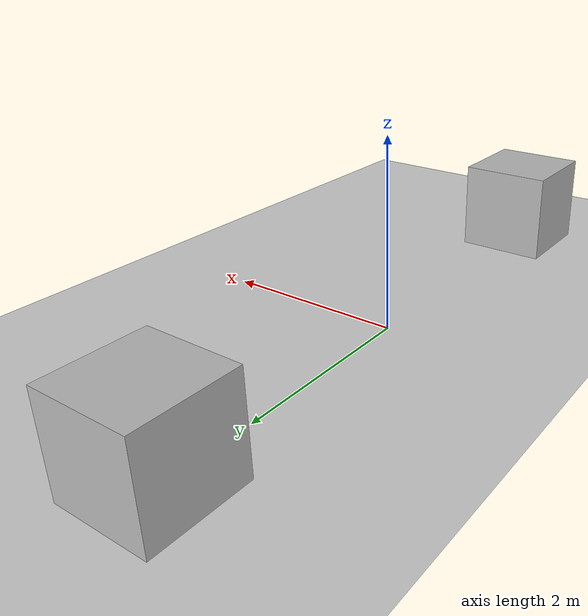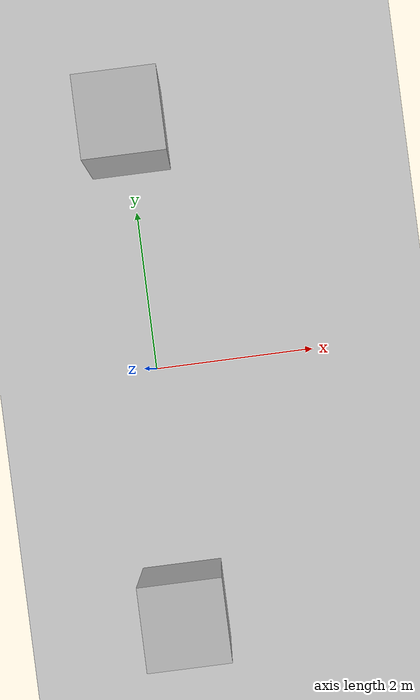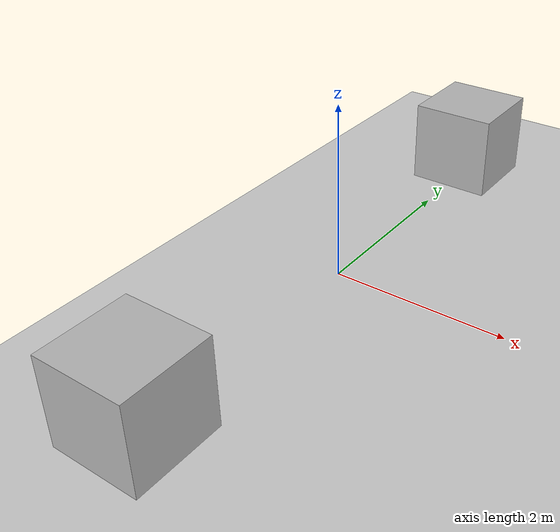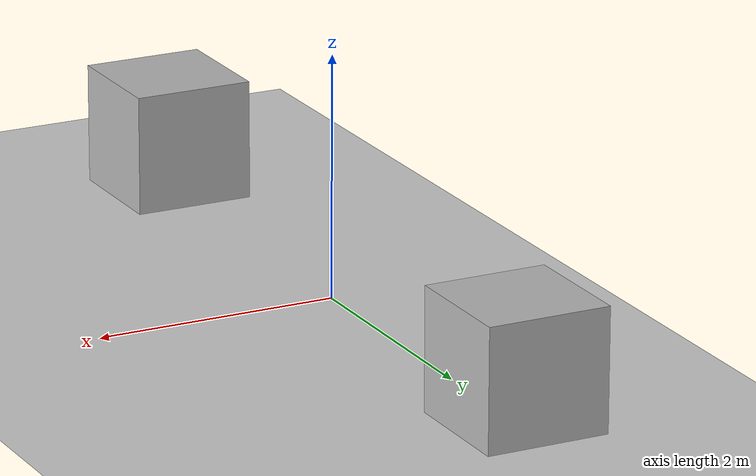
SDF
<?xml version="1.0"?>
<sdf version="1.6">
  <world name="default">
    <include>
      <uri>model://ground_plane</uri>
    </include>
    <include>
      <uri>model://sun</uri>
    </include>
    <model name="force_on_world_frame">
      <pose>0 3 0.5 0 0 1.57</pose>
      <link name="link">
        <collision name="collision">
          <geometry>
            <box>
              <size>1 1 1</size>
            </box>
          </geometry>
        </collision>
        <visual name="visual">
          <geometry>
            <box>
              <size>1 1 1</size>
            </box>
          </geometry>
        </visual>
      </link>
      <plugin name="gazebo_ros_force" filename="libgazebo_ros_force_mode.so">
        <ros>
          <namespace>/demo/world</namespace>
          <remapping>gazebo_ros_force:=force_demo</remapping>
        </ros>
        <link_name>link</link_name>
        <force_frame>world</force_frame>
      </plugin>

    </model>
    <model name="force_on_link_frame">
      <pose>0 -3 0.5 0 0 1.57</pose>
      <link name="link">
        <collision name="collision">
          <geometry>
            <box>
              <size>1 1 1</size>
            </box>
          </geometry>
        </collision>
        <visual name="visual">
          <geometry>
            <box>
              <size>1 1 1</size>
            </box>
          </geometry>
        </visual>
      </link>
      <plugin name="gazebo_ros_force" filename="libgazebo_ros_force_mode.so">
        <ros>
          <namespace>/demo/link</namespace>
          <remapping>gazebo_ros_force:=force_demo</remapping>
        </ros>
        <link_name>link</link_name>
        <force_frame>link</force_frame>
      </plugin>
    </model>
  </world>
</sdf>
